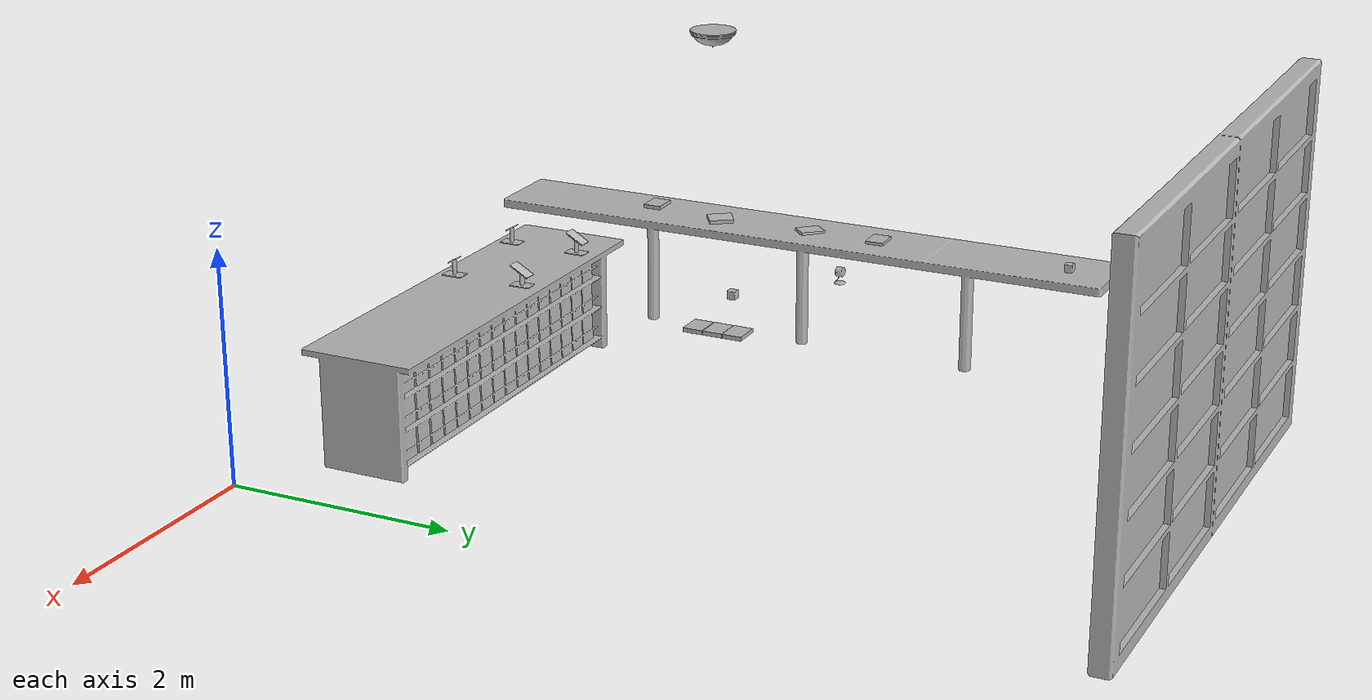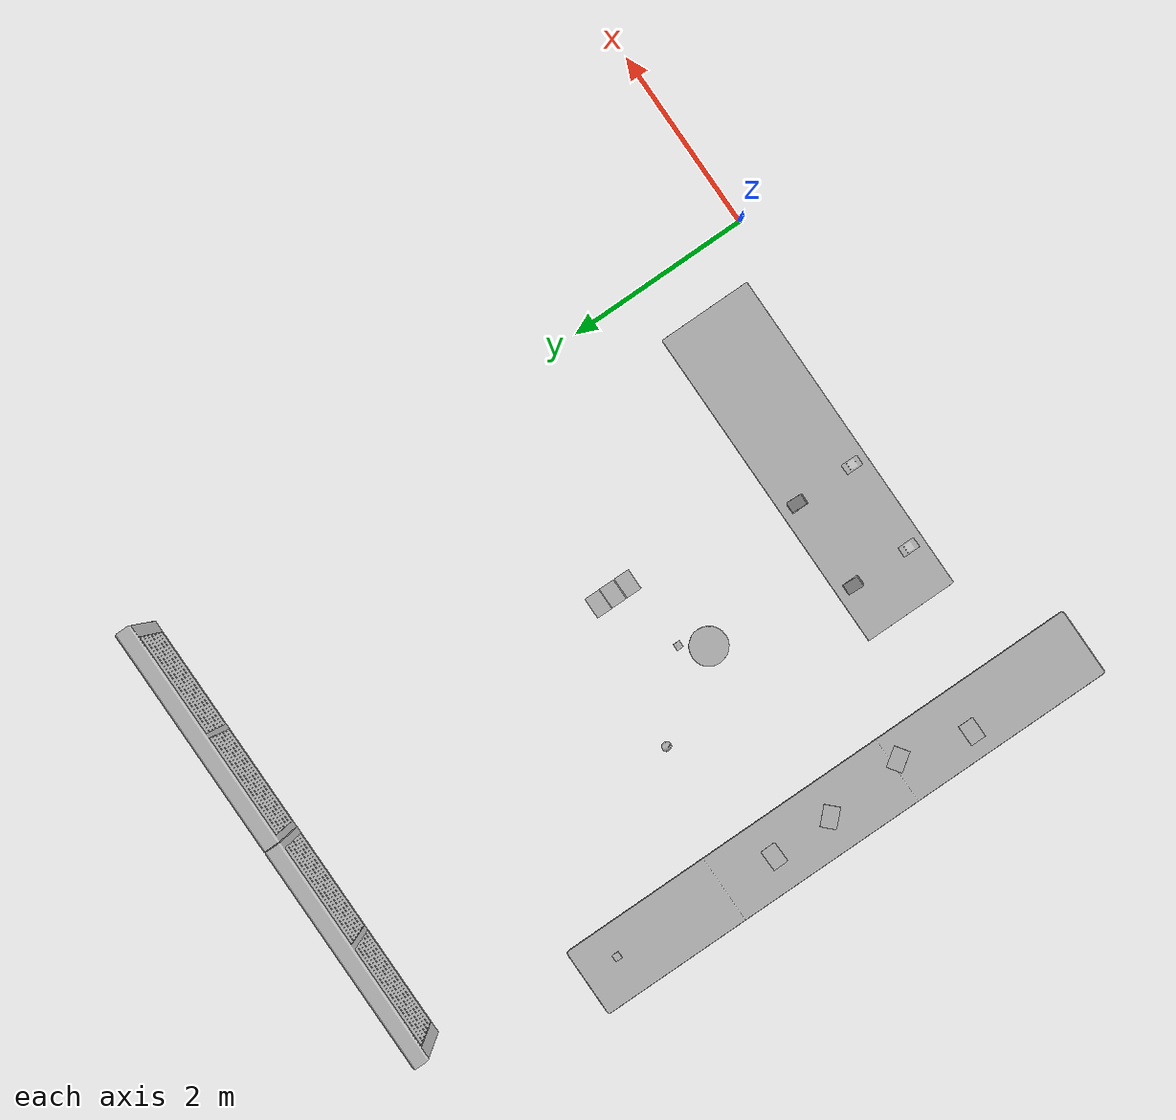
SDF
<sdf version="1.7">
 <world name="default">
  <model name="BookE_01_002">
   <frame name="aws_robomaker_retail_BookE_01::__model__" attached_to="aws_robomaker_retail_BookE_01::link">
    <pose relative_to="__model__">0 0 0 0 -0 0</pose>
   </frame>
   <link name="aws_robomaker_retail_BookE_01::link">
    <inertial>
     <mass>1</mass>
     <inertia><ixy>0</ixy><ixz>0</ixz><iyz>0</iyz><ixx>0.0666</ixx><iyy>0.0346</iyy><izz>0.0986</izz></inertia>
    </inertial>
    <collision name="collision">
     <geometry>
      <mesh>
       <uri>model://aws_robomaker_retail_BookE_01/meshes/aws_BookE_01_collision.DAE</uri>
       <scale>1 1 1</scale>
      </mesh>
     </geometry>
    </collision>
    <visual name="visual">
     <geometry>
      <mesh><uri>model://aws_robomaker_retail_BookE_01/meshes/aws_BookE_01_visual.DAE</uri></mesh>
     </geometry>
    </visual>
    <pose relative_to="aws_robomaker_retail_BookE_01::__model__">0 0 0 0 -0 0</pose>
   </link>
   <static>1</static>
   <pose>-5.414 3.33067 0.934015 -1e-06 -1e-06 -1.54109</pose>
  </model>
  <model name="BookE_01_008">
   <frame name="aws_robomaker_retail_BookE_01::__model__" attached_to="aws_robomaker_retail_BookE_01::link">
    <pose relative_to="__model__">0 0 0 0 -0 0</pose>
   </frame>
   <link name="aws_robomaker_retail_BookE_01::link">
    <inertial>
     <mass>1</mass>
     <inertia><ixy>0</ixy><ixz>0</ixz><iyz>0</iyz><ixx>0.0666</ixx><iyy>0.0346</iyy><izz>0.0986</izz></inertia>
    </inertial>
    <collision name="collision">
     <geometry>
      <mesh>
       <uri>model://aws_robomaker_retail_BookE_01/meshes/aws_BookE_01_collision.DAE</uri>
       <scale>1 1 1</scale>
      </mesh>
     </geometry>
    </collision>
    <visual name="visual">
     <geometry>
      <mesh><uri>model://aws_robomaker_retail_BookE_01/meshes/aws_BookE_01_visual.DAE</uri></mesh>
     </geometry>
    </visual>
    <pose relative_to="aws_robomaker_retail_BookE_01::__model__">0 0 0 0 -0 0</pose>
   </link>
   <static>1</static>
   <pose>-5.31512 1.77195 0.955242 3.14124 -0.072268 -2.52691</pose>
  </model>
  <model name="BookE_01_010">
   <frame name="aws_robomaker_retail_BookE_01::__model__" attached_to="aws_robomaker_retail_BookE_01::link">
    <pose relative_to="__model__">0 0 0 0 -0 0</pose>
   </frame>
   <link name="aws_robomaker_retail_BookE_01::link">
    <inertial>
     <mass>1</mass>
     <inertia><ixy>0</ixy><ixz>0</ixz><iyz>0</iyz><ixx>0.0666</ixx><iyy>0.0346</iyy><izz>0.0986</izz></inertia>
    </inertial>
    <collision name="collision">
     <geometry>
      <mesh>
       <uri>model://aws_robomaker_retail_BookE_01/meshes/aws_BookE_01_collision.DAE</uri>
       <scale>1 1 1</scale>
      </mesh>
     </geometry>
    </collision>
    <visual name="visual">
     <geometry>
      <mesh><uri>model://aws_robomaker_retail_BookE_01/meshes/aws_BookE_01_visual.DAE</uri></mesh>
     </geometry>
    </visual>
    <pose relative_to="aws_robomaker_retail_BookE_01::__model__">0 0 0 0 -0 0</pose>
   </link>
   <static>1</static>
   <pose>-5.50342 1.01206 0.941463 0 0 -1.56844</pose>
  </model>
  <model name="BookE_01_013">
   <frame name="aws_robomaker_retail_BookE_01::__model__" attached_to="aws_robomaker_retail_BookE_01::link">
    <pose relative_to="__model__">0 0 0 0 -0 0</pose>
   </frame>
   <link name="aws_robomaker_retail_BookE_01::link">
    <inertial>
     <mass>1</mass>
     <inertia><ixy>0</ixy><ixz>0</ixz><iyz>0</iyz><ixx>0.0666</ixx><iyy>0.0346</iyy><izz>0.0986</izz></inertia>
    </inertial>
    <collision name="collision">
     <geometry>
      <mesh>
       <uri>model://aws_robomaker_retail_BookE_01/meshes/aws_BookE_01_collision.DAE</uri>
       <scale>1 1 1</scale>
      </mesh>
     </geometry>
    </collision>
    <visual name="visual">
     <geometry>
      <mesh><uri>model://aws_robomaker_retail_BookE_01/meshes/aws_BookE_01_visual.DAE</uri></mesh>
     </geometry>
    </visual>
    <pose relative_to="aws_robomaker_retail_BookE_01::__model__">0 0 0 0 -0 0</pose>
   </link>
   <static>1</static>
   <pose>-5.40391 2.65088 0.931119 0.021204 -1e-06 -2.35575</pose>
  </model>
  <model name="BookE_01_016">
   <frame name="aws_robomaker_retail_BookE_01::__model__" attached_to="aws_robomaker_retail_BookE_01::link">
    <pose relative_to="__model__">0 0 0 0 -0 0</pose>
   </frame>
   <link name="aws_robomaker_retail_BookE_01::link">
    <inertial>
     <mass>1</mass>
     <inertia><ixy>0</ixy><ixz>0</ixz><iyz>0</iyz><ixx>0.0666</ixx><iyy>0.0346</iyy><izz>0.0986</izz></inertia>
    </inertial>
    <collision name="collision">
     <geometry>
      <mesh>
       <uri>model://aws_robomaker_retail_BookE_01/meshes/aws_BookE_01_collision.DAE</uri>
       <scale>1 1 1</scale>
      </mesh>
     </geometry>
    </collision>
    <visual name="visual">
     <geometry>
      <mesh><uri>model://aws_robomaker_retail_BookE_01/meshes/aws_BookE_01_visual.DAE</uri></mesh>
     </geometry>
    </visual>
    <pose relative_to="aws_robomaker_retail_BookE_01::__model__">0 0 0 0 -0 0</pose>
   </link>
   <static>1</static>
   <pose>-2.35737 2.99369 1.05494 0 -0 1.56816</pose>
  </model>
  <model name="BookE_01_019">
   <frame name="aws_robomaker_retail_BookE_01::__model__" attached_to="aws_robomaker_retail_BookE_01::link">
    <pose relative_to="__model__">0 0 0 0 -0 0</pose>
   </frame>
   <link name="aws_robomaker_retail_BookE_01::link">
    <inertial>
     <mass>1</mass>
     <inertia><ixy>0</ixy><ixz>0</ixz><iyz>0</iyz><ixx>0.0666</ixx><iyy>0.0346</iyy><izz>0.0986</izz></inertia>
    </inertial>
    <collision name="collision">
     <geometry>
      <mesh>
       <uri>model://aws_robomaker_retail_BookE_01/meshes/aws_BookE_01_collision.DAE</uri>
       <scale>1 1 1</scale>
      </mesh>
     </geometry>
    </collision>
    <visual name="visual">
     <geometry>
      <mesh><uri>model://aws_robomaker_retail_BookE_01/meshes/aws_BookE_01_visual.DAE</uri></mesh>
     </geometry>
    </visual>
    <pose relative_to="aws_robomaker_retail_BookE_01::__model__">0 0 0 0 -0 0</pose>
   </link>
   <static>1</static>
   <pose>-2.35737 3.17292 1.05494 0 -0 1.56816</pose>
  </model>
  <model name="BookE_01_030">
   <frame name="aws_robomaker_retail_BookE_01::__model__" attached_to="aws_robomaker_retail_BookE_01::link">
    <pose relative_to="__model__">0 0 0 0 -0 0</pose>
   </frame>
   <link name="aws_robomaker_retail_BookE_01::link">
    <inertial>
     <mass>1</mass>
     <inertia><ixy>0</ixy><ixz>0</ixz><iyz>0</iyz><ixx>0.0666</ixx><iyy>0.0346</iyy><izz>0.0986</izz></inertia>
    </inertial>
    <collision name="collision">
     <geometry>
      <mesh>
       <uri>model://aws_robomaker_retail_BookE_01/meshes/aws_BookE_01_collision.DAE</uri>
       <scale>1 1 1</scale>
      </mesh>
     </geometry>
    </collision>
    <visual name="visual">
     <geometry>
      <mesh><uri>model://aws_robomaker_retail_BookE_01/meshes/aws_BookE_01_visual.DAE</uri></mesh>
     </geometry>
    </visual>
    <pose relative_to="aws_robomaker_retail_BookE_01::__model__">0 0 0 0 -0 0</pose>
   </link>
   <static>1</static>
   <pose>-2.35737 3.34639 1.05494 0 -0 1.56816</pose>
  </model>
  <model name="SecurityCamera_01_002">
   <frame name="aws_robomaker_retail_SecurityCamera_01::__model__" attached_to="aws_robomaker_retail_SecurityCamera_01::link">
    <pose relative_to="__model__">0 0 0 0 -0 0</pose>
   </frame>
   <link name="aws_robomaker_retail_SecurityCamera_01::link">
    <inertial>
     <mass>1</mass>
     <inertia>
      <ixx>18.2222</ixx>
      <ixy>0</ixy>
      <ixz>0</ixz>
      <iyy>18.2222</iyy>
      <iyz>0</iyz>
      <izz>0.0018767</izz>
     </inertia>
    </inertial>
    <collision name="collision">
     <geometry>
      <mesh>
       <uri>model://aws_robomaker_retail_SecurityCamera_01/meshes/aws_SecurityCamera_01_collision.DAE</uri>
       <scale>1 1 1</scale>
      </mesh>
     </geometry>
    </collision>
    <visual name="visual">
     <geometry>
      <mesh><uri>model://aws_robomaker_retail_SecurityCamera_01/meshes/aws_SecurityCamera_01_visual.DAE</uri></mesh>
     </geometry>
    </visual>
    <pose relative_to="aws_robomaker_retail_SecurityCamera_01::__model__">0 0 0 0 -0 0</pose>
   </link>
   <pose>-3.90434 3.59013 1.03673 -0.000122 5e-06 3.05526</pose>
  </model>
  <model name="DeskB_01_002">
   <frame name="aws_robomaker_retail_DeskB_01::__model__" attached_to="aws_robomaker_retail_DeskB_01::link">
    <pose relative_to="__model__">0 0 0 0 -0 0</pose>
   </frame>
   <link name="aws_robomaker_retail_DeskB_01::link">
    <inertial>
     <mass>50</mass>
     <inertia><ixx>154.884</ixx><ixy>0</ixy><ixz>0</ixz><iyy>7.48424</iyy><iyz>0</iyz><izz>152.099</izz></inertia>
    </inertial>
    <collision name="collision">
     <geometry>
      <mesh>
       <uri>model://aws_robomaker_retail_DeskB_01/meshes/aws_DeskB_01_collision.DAE</uri>
       <scale>1 1 1</scale>
      </mesh>
     </geometry>
    </collision>
    <visual name="visual">
     <geometry>
      <mesh><uri>model://aws_robomaker_retail_DeskB_01/meshes/aws_DeskB_01_visual.DAE</uri></mesh>
     </geometry>
    </visual>
    <pose relative_to="aws_robomaker_retail_DeskB_01::__model__">0 0 0 0 -0 0</pose>
   </link>
   <static>1</static>
   <pose>-5.40071 2.58054 -0.181282 0 -0 0</pose>
  </model>
  <model name="DeskA_01_002">
   <frame name="aws_robomaker_retail_DeskA_01::__model__" attached_to="aws_robomaker_retail_DeskA_01::link">
    <pose relative_to="__model__">0 0 0 0 -0 0</pose>
   </frame>
   <link name="aws_robomaker_retail_DeskA_01::link">
    <inertial>
     <mass>20</mass>
     <inertia><ixx>3.49717</ixx><ixy>0</ixy><ixz>0</ixz><iyy>23.5599</iyy><iyz>0</iyz><izz>23.5702</izz></inertia>
    </inertial>
    <collision name="collision">
     <geometry>
      <mesh>
       <uri>model://aws_robomaker_retail_DeskA_01/meshes/aws_DeskA_01_collision.DAE</uri>
       <scale>1 1 1</scale>
      </mesh>
     </geometry>
    </collision>
    <visual name="visual">
     <geometry>
      <mesh><uri>model://aws_robomaker_retail_DeskA_01/meshes/aws_DeskA_01_visual.DAE</uri></mesh>
     </geometry>
    </visual>
    <pose relative_to="aws_robomaker_retail_DeskA_01::__model__">0 0 0 0 -0 0</pose>
   </link>
   <static>1</static>
   <pose>-2.36994 0.836099 0.00876 -0.000772 -0.001938 1.7e-05</pose>
  </model>
  <model name="DoorB_01_001">
   <frame name="aws_robomaker_retail_DoorB_01::__model__" attached_to="aws_robomaker_retail_DoorB_01::link">
    <pose relative_to="__model__">0 0 0 0 -0 0</pose>
   </frame>
   <link name="aws_robomaker_retail_DoorB_01::link">
    <inertial>
     <mass>50</mass>
     <inertia><ixx>44.5597</ixx><ixy>0</ixy><ixz>0</ixz><iyy>151.699</iyy><iyz>0</iyz><izz>107.806</izz></inertia>
    </inertial>
    <collision name="collision">
     <geometry>
      <mesh>
       <uri>model://aws_robomaker_retail_DoorB_01/meshes/aws_DoorB_01_collision.DAE</uri>
       <scale>1 1 1</scale>
      </mesh>
     </geometry>
    </collision>
    <visual name="visual">
     <geometry>
      <mesh><uri>model://aws_robomaker_retail_DoorB_01/meshes/aws_DoorB_01_visual.DAE</uri></mesh>
     </geometry>
    </visual>
    <pose relative_to="aws_robomaker_retail_DoorB_01::__model__">0 0 0 0 -0 0</pose>
   </link>
   <static>1</static>
   <pose>-2.49246 7.21937 -0.035203 0 -0 0</pose>
  </model>
  <model name="Tablet_01_007">
   <frame name="aws_robomaker_retail_Tablet_01::__model__" attached_to="aws_robomaker_retail_Tablet_01::link">
    <pose relative_to="__model__">0 0 0 0 -0 0</pose>
   </frame>
   <link name="aws_robomaker_retail_Tablet_01::link">
    <inertial>
     <mass>0.5</mass>
     <inertia><ixx>0.035652</ixx><ixy>0</ixy><ixz>0</ixz><iyy>0.01</iyy><iyz>0</iyz><izz>0.041207</izz></inertia>
    </inertial>
    <collision name="collision">
     <geometry>
      <mesh>
       <uri>model://aws_robomaker_retail_Tablet_01/meshes/aws_Tablet_01_collision.DAE</uri>
       <scale>1 1 1</scale>
      </mesh>
     </geometry>
    </collision>
    <visual name="visual">
     <geometry>
      <mesh><uri>model://aws_robomaker_retail_Tablet_01/meshes/aws_Tablet_01_visual.DAE</uri></mesh>
     </geometry>
    </visual>
    <pose relative_to="aws_robomaker_retail_Tablet_01::__model__">0 0 0 0 -0 0</pose>
   </link>
   <static>1</static>
   <pose>-2.64967 1.16382 1.17789 0.513308 -1e-06 3.11006</pose>
  </model>
  <model name="Tablet_01_008">
   <frame name="aws_robomaker_retail_Tablet_01::__model__" attached_to="aws_robomaker_retail_Tablet_01::link">
    <pose relative_to="__model__">0 0 0 0 -0 0</pose>
   </frame>
   <link name="aws_robomaker_retail_Tablet_01::link">
    <inertial>
     <mass>0.5</mass>
     <inertia><ixx>0.035652</ixx><ixy>0</ixy><ixz>0</ixz><iyy>0.01</iyy><iyz>0</iyz><izz>0.041207</izz></inertia>
    </inertial>
    <collision name="collision">
     <geometry>
      <mesh>
       <uri>model://aws_robomaker_retail_Tablet_01/meshes/aws_Tablet_01_collision.DAE</uri>
       <scale>1 1 1</scale>
      </mesh>
     </geometry>
    </collision>
    <visual name="visual">
     <geometry>
      <mesh><uri>model://aws_robomaker_retail_Tablet_01/meshes/aws_Tablet_01_visual.DAE</uri></mesh>
     </geometry>
    </visual>
    <pose relative_to="aws_robomaker_retail_Tablet_01::__model__">0 0 0 0 -0 0</pose>
   </link>
   <static>1</static>
   <pose>-3.63655 1.16382 1.17789 0.513308 -1e-06 3.11006</pose>
  </model>
  <model name="Holder_01_006">
   <frame name="aws_robomaker_retail_Holder_01::__model__" attached_to="aws_robomaker_retail_Holder_01::link">
    <pose relative_to="__model__">0 0 0 0 -0 0</pose>
   </frame>
   <link name="aws_robomaker_retail_Holder_01::link">
    <inertial><mass>1</mass></inertial>
    <collision name="collision">
     <geometry>
      <mesh>
       <uri>model://aws_robomaker_retail_Holder_01/meshes/aws_Holder_01_collision.DAE</uri>
       <scale>1 1 1</scale>
      </mesh>
     </geometry>
    </collision>
    <visual name="visual">
     <geometry>
      <mesh><uri>model://aws_robomaker_retail_Holder_01/meshes/aws_Holder_01_visual.DAE</uri></mesh>
     </geometry>
    </visual>
    <pose relative_to="aws_robomaker_retail_Holder_01::__model__">0 0 0 0 -0 0</pose>
   </link>
   <static>1</static>
   <pose>-2.64781 0.495602 1.03776 0 -0 0</pose>
  </model>
  <model name="Holder_01_008">
   <frame name="aws_robomaker_retail_Holder_01::__model__" attached_to="aws_robomaker_retail_Holder_01::link">
    <pose relative_to="__model__">0 0 0 0 -0 0</pose>
   </frame>
   <link name="aws_robomaker_retail_Holder_01::link">
    <inertial><mass>1</mass></inertial>
    <collision name="collision">
     <geometry>
      <mesh>
       <uri>model://aws_robomaker_retail_Holder_01/meshes/aws_Holder_01_collision.DAE</uri>
       <scale>1 1 1</scale>
      </mesh>
     </geometry>
    </collision>
    <visual name="visual">
     <geometry>
      <mesh><uri>model://aws_robomaker_retail_Holder_01/meshes/aws_Holder_01_visual.DAE</uri></mesh>
     </geometry>
    </visual>
    <pose relative_to="aws_robomaker_retail_Holder_01::__model__">0 0 0 0 -0 0</pose>
   </link>
   <static>1</static>
   <pose>-3.63958 0.495602 1.03776 0 -0 0</pose>
  </model>
  <model name="Holder_01_011">
   <frame name="aws_robomaker_retail_Holder_01::__model__" attached_to="aws_robomaker_retail_Holder_01::link">
    <pose relative_to="__model__">0 0 0 0 -0 0</pose>
   </frame>
   <link name="aws_robomaker_retail_Holder_01::link">
    <inertial><mass>1</mass></inertial>
    <collision name="collision">
     <geometry>
      <mesh>
       <uri>model://aws_robomaker_retail_Holder_01/meshes/aws_Holder_01_collision.DAE</uri>
       <scale>1 1 1</scale>
      </mesh>
     </geometry>
    </collision>
    <visual name="visual">
     <geometry>
      <mesh><uri>model://aws_robomaker_retail_Holder_01/meshes/aws_Holder_01_visual.DAE</uri></mesh>
     </geometry>
    </visual>
    <pose relative_to="aws_robomaker_retail_Holder_01::__model__">0 0 0 0 -0 0</pose>
   </link>
   <static>1</static>
   <pose>-2.65916 1.16083 1.03776 0 0 -3.13015</pose>
  </model>
  <model name="Holder_01_012">
   <frame name="aws_robomaker_retail_Holder_01::__model__" attached_to="aws_robomaker_retail_Holder_01::link">
    <pose relative_to="__model__">0 0 0 0 -0 0</pose>
   </frame>
   <link name="aws_robomaker_retail_Holder_01::link">
    <inertial><mass>1</mass></inertial>
    <collision name="collision">
     <geometry>
      <mesh>
       <uri>model://aws_robomaker_retail_Holder_01/meshes/aws_Holder_01_collision.DAE</uri>
       <scale>1 1 1</scale>
      </mesh>
     </geometry>
    </collision>
    <visual name="visual">
     <geometry>
      <mesh><uri>model://aws_robomaker_retail_Holder_01/meshes/aws_Holder_01_visual.DAE</uri></mesh>
     </geometry>
    </visual>
    <pose relative_to="aws_robomaker_retail_Holder_01::__model__">0 0 0 0 -0 0</pose>
   </link>
   <static>1</static>
   <pose>-3.6313 1.16083 1.03776 0 0 -3.13015</pose>
  </model>
  <model name="LightA_01_005">
   <frame name="aws_robomaker_retail_LightA_01::__model__" attached_to="aws_robomaker_retail_LightA_01::link">
    <pose relative_to="__model__">0 0 0 0 -0 0</pose>
   </frame>
   <link name="aws_robomaker_retail_LightA_01::link">
    <inertial><mass>1</mass></inertial>
    <collision name="collision">
     <geometry>
      <mesh>
       <uri>model://aws_robomaker_retail_LightA_01/meshes/aws_LightA_01_collision.DAE</uri>
       <scale>1 1 1</scale>
      </mesh>
     </geometry>
    </collision>
    <visual name="visual">
     <geometry>
      <mesh><uri>model://aws_robomaker_retail_LightA_01/meshes/aws_LightA_01_visual.DAE</uri></mesh>
     </geometry>
    </visual>
    <pose relative_to="aws_robomaker_retail_LightA_01::__model__">0 0 0 0 -0 0</pose>
   </link>
   <static>1</static>
   <pose>-3.271 2.68593 3.15033 0 -0 0</pose>
  </model>
  <model name="MagicCube_01_002">
   <frame name="aws_robomaker_retail_MagicCube_01::__model__" attached_to="aws_robomaker_retail_MagicCube_01::link">
    <pose relative_to="__model__">0 0 0 0 -0 0</pose>
   </frame>
   <link name="aws_robomaker_retail_MagicCube_01::link">
    <inertial>
     <mass>0.2</mass>
     <inertia><ixx>0.01</ixx><ixy>0</ixy><ixz>0</ixz><iyy>0.01</iyy><iyz>0</iyz><izz>0.01</izz></inertia>
    </inertial>
    <collision name="collision">
     <geometry>
      <mesh>
       <uri>model://aws_robomaker_retail_MagicCube_01/meshes/aws_MagicCube_01_collision.DAE</uri>
       <scale>1 1 1</scale>
      </mesh>
     </geometry>
    </collision>
    <visual name="visual">
     <geometry>
      <mesh><uri>model://aws_robomaker_retail_MagicCube_01/meshes/aws_MagicCube_01_visual.DAE</uri></mesh>
     </geometry>
    </visual>
    <pose relative_to="aws_robomaker_retail_MagicCube_01::__model__">0 0 0 0 -0 0</pose>
   </link>
   <pose>-5.34656 5.1781 0.928725 -2e-06 4e-06 -1.55541</pose>
  </model>
  <model name="MagicCube_01_003">
   <frame name="aws_robomaker_retail_MagicCube_01::__model__" attached_to="aws_robomaker_retail_MagicCube_01::link">
    <pose relative_to="__model__">0 0 0 0 -0 0</pose>
   </frame>
   <link name="aws_robomaker_retail_MagicCube_01::link">
    <inertial>
     <mass>0.2</mass>
     <inertia><ixx>0.01</ixx><ixy>0</ixy><ixz>0</ixz><iyy>0.01</iyy><iyz>0</iyz><izz>0.01</izz></inertia>
    </inertial>
    <collision name="collision">
     <geometry>
      <mesh>
       <uri>model://aws_robomaker_retail_MagicCube_01/meshes/aws_MagicCube_01_collision.DAE</uri>
       <scale>1 1 1</scale>
      </mesh>
     </geometry>
    </collision>
    <visual name="visual">
     <geometry>
      <mesh><uri>model://aws_robomaker_retail_MagicCube_01/meshes/aws_MagicCube_01_visual.DAE</uri></mesh>
     </geometry>
    </visual>
    <pose relative_to="aws_robomaker_retail_MagicCube_01::__model__">0 0 0 0 -0 0</pose>
   </link>
   <pose>-3.14652 2.92836 1.03615 0.000127 -1e-05 9e-06</pose>
  </model>
 </world>
</sdf>
